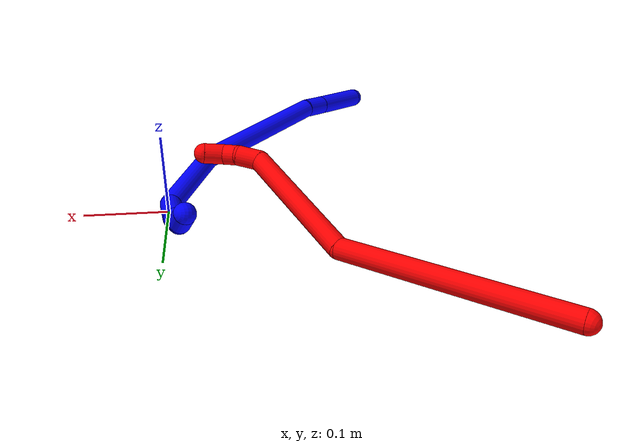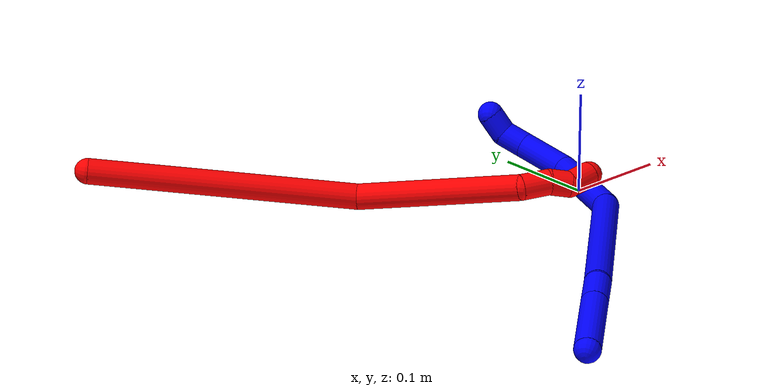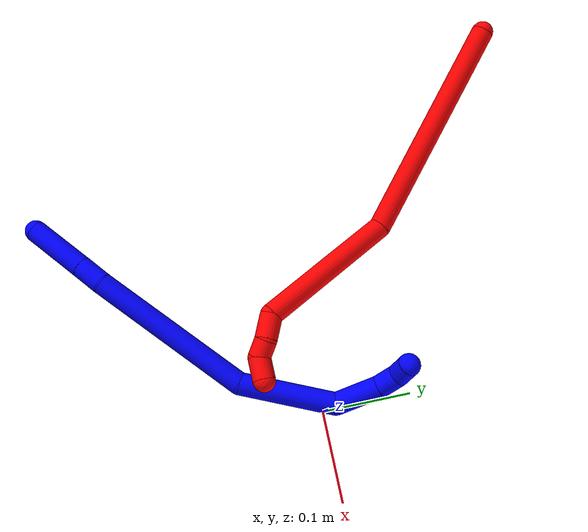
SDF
<sdf version="1.7">
 <world name="default">
  <plugin name="TubeGeneratorPlugin" filename="libtube_generator_plugin.so"/>
  <model name="photoneo_s_sensor">
   <static>1</static>
   <pose>0 0 2 1.57079 1.57079 3.14159</pose>
   <link name="link">
    <inertial><mass>0.1</mass></inertial>
    <sensor name="sensor" type="depth">
     <update_rate>30</update_rate>
     <camera>
      <horizontal_fov>1.22</horizontal_fov>
      <image><width>1920</width><height>1200</height><format>B8G8R8</format></image>
      <clip><near>0.1</near><far>4</far></clip>
      <depth_camera><output>points</output></depth_camera>
     </camera>
     <plugin name="camera_plugin" filename="libgazebo_ros_depth_camera.so">
      <baseline>0.2</baseline>
      <alwaysOn>1</alwaysOn>
      <updateRate>0.0</updateRate>
      <cameraName>camera_ir</cameraName>
      <imageTopicName>/camera/color/image_raw</imageTopicName>
      <cameraInfoTopicName>/camera/color/camera_info</cameraInfoTopicName>
      <depthImageTopicName>/camera/depth/image_raw</depthImageTopicName>
      <depthImageCameraInfoTopicName>/camera/depth/camera_info</depthImageCameraInfoTopicName>
      <pointCloudTopicName>/camera/depth/points</pointCloudTopicName>
      <frameName>fr_optical</frameName>
      <pointCloudCutoff>0.1</pointCloudCutoff>
      <pointCloudCutoffMax>2.0</pointCloudCutoffMax>
      <distortionK1>0</distortionK1>
      <distortionK2>0</distortionK2>
      <distortionK3>0</distortionK3>
      <distortionT1>0</distortionT1>
      <distortionT2>0</distortionT2>
      <CxPrime>0</CxPrime>
      <Cx>0</Cx>
      <Cy>0</Cy>
      <focalLength>0</focalLength>
      <hackBaseline>0</hackBaseline>
     </plugin>
    </sensor>
   </link>
  </model>
  <gravity>0 0 -9.8</gravity>
  <magnetic_field>6e-06 2.3e-05 -4.2e-05</magnetic_field>
  <atmosphere type="adiabatic"/>
  <physics name="default_physics" default="0" type="ode">
   <max_step_size>0.003</max_step_size>
   <real_time_factor>1</real_time_factor>
   <real_time_update_rate>1000</real_time_update_rate>
   <max_contacts>10000</max_contacts>
   <ode>
    <solver>
     <type>quick</type>
     <iters>100</iters>
     <sor>1.3</sor>
     <use_dynamic_moi_rescaling>0</use_dynamic_moi_rescaling>
    </solver>
    <constraints>
     <contact_max_correcting_vel>0</contact_max_correcting_vel>
     <contact_surface_layer>0.001</contact_surface_layer>
     <cfm>0</cfm>
     <erp>0.2</erp>
    </constraints>
   </ode>
  </physics>
  <scene><ambient>0.4 0.4 0.4 1</ambient><background>0.7 0.7 0.7 1</background><shadows>0</shadows></scene>
  <audio><device>default</device></audio>
  <spherical_coordinates>
   <surface_model>EARTH_WGS84</surface_model>
   <latitude_deg>0</latitude_deg>
   <longitude_deg>0</longitude_deg>
   <elevation>0</elevation>
   <heading_deg>0</heading_deg>
  </spherical_coordinates>
  <model name="bin">
   <static>1</static>
   <link name="bottom">
    <collision name="collision-bottom">
     <pose>0 0 -0.01 0 -0 0</pose>
     <geometry><box><size>0.8 0.6 0.02</size></box></geometry>
     <surface>
      <friction><ode><mu>100</mu><mu2>100</mu2></ode></friction>
      <contact><collide_bitmask>65535</collide_bitmask></contact>
     </surface>
    </collision>
   </link>
   <link name="west_wall">
    <collision name="collision-west_wall">
     <pose>-0.41 0 0.1 0 -0 0</pose>
     <geometry><box><size>0.02 0.6 0.2</size></box></geometry>
     <surface>
      <friction><ode><mu>100</mu><mu2>100</mu2></ode></friction>
      <contact><collide_bitmask>65535</collide_bitmask></contact>
     </surface>
    </collision>
   </link>
   <link name="east_wall">
    <collision name="collision-east_wall">
     <pose>0.41 0 0.1 0 -0 0</pose>
     <geometry><box><size>0.02 0.6 0.2</size></box></geometry>
     <surface>
      <friction><ode><mu>100</mu><mu2>100</mu2></ode></friction>
      <contact><collide_bitmask>65535</collide_bitmask></contact>
     </surface>
    </collision>
   </link>
   <link name="south_wall">
    <collision name="collision-south_wall">
     <pose>0 -0.31 0.1 0 -0 0</pose>
     <geometry><box><size>0.8 0.02 0.2</size></box></geometry>
     <surface>
      <friction><ode><mu>100</mu><mu2>100</mu2></ode></friction>
      <contact><collide_bitmask>65535</collide_bitmask></contact>
     </surface>
    </collision>
   </link>
   <link name="north_wall">
    <collision name="collision-north_wall">
     <pose>0 0.31 0.1 0 -0 0</pose>
     <geometry><box><size>0.8 0.02 0.2</size></box></geometry>
     <surface>
      <friction><ode><mu>100</mu><mu2>100</mu2></ode></friction>
      <contact><collide_bitmask>65535</collide_bitmask></contact>
     </surface>
    </collision>
   </link>
  </model>
  <model name="1">
   <static>0</static>
   <link name="1">
    <collision name="collision-cylinder-e_1_1_4">
     <pose>-0.00607 0.008571 -0.035417 -2.90416 -0.165064 1.21272</pose>
     <geometry><cylinder><radius>0.0125</radius><length>0.073883</length></cylinder></geometry>
     <surface>
      <friction><ode><mu>1.16</mu><mu2>1.16</mu2><slip1>0</slip1><slip2>0</slip2></ode></friction>
      <contact><ode><kp>1e+06</kp><kd>1</kd><max_vel>0</max_vel><min_depth>0.001</min_depth></ode></contact>
     </surface>
    </collision>
    <visual name="visual-cylinder-e_1_1_4">
     <pose>-0.00607 0.008571 -0.035417 -2.90416 -0.165064 1.21272</pose>
     <geometry><cylinder><radius>0.0125</radius><length>0.073883</length></cylinder></geometry>
     <material><ambient>0 0 1 1</ambient></material>
    </visual>
    <collision name="collision-cylinder-e_2_4_5">
     <pose>-0.014751 0.020706 -0.086274 -2.91472 -0.163321 1.24594</pose>
     <geometry><cylinder><radius>0.0125</radius><length>0.032119</length></cylinder></geometry>
     <surface>
      <friction><ode><mu>1.16</mu><mu2>1.16</mu2><slip1>0</slip1><slip2>0</slip2></ode></friction>
      <contact><ode><kp>1e+06</kp><kd>1</kd><max_vel>0</max_vel><min_depth>0.001</min_depth></ode></contact>
     </surface>
    </collision>
    <visual name="visual-cylinder-e_2_4_5">
     <pose>-0.014751 0.020706 -0.086274 -2.91472 -0.163321 1.24594</pose>
     <geometry><cylinder><radius>0.0125</radius><length>0.032119</length></cylinder></geometry>
     <material><ambient>0 0 1 1</ambient></material>
    </visual>
    <collision name="collision-cylinder-e_3_5_6">
     <pose>-0.04412 0.058172 -0.185428 -2.75681 -0.288019 1.27983</pose>
     <geometry><cylinder><radius>0.0125</radius><length>0.188398</length></cylinder></geometry>
     <surface>
      <friction><ode><mu>1.16</mu><mu2>1.16</mu2><slip1>0</slip1><slip2>0</slip2></ode></friction>
      <contact><ode><kp>1e+06</kp><kd>1</kd><max_vel>0</max_vel><min_depth>0.001</min_depth></ode></contact>
     </surface>
    </collision>
    <visual name="visual-cylinder-e_3_5_6">
     <pose>-0.04412 0.058172 -0.185428 -2.75681 -0.288019 1.27983</pose>
     <geometry><cylinder><radius>0.0125</radius><length>0.188398</length></cylinder></geometry>
     <material><ambient>0 0 1 1</ambient></material>
    </visual>
    <collision name="collision-cylinder-e_4_6_7">
     <pose>-0.072132 0.12737 -0.309905 -2.42793 -0.023255 0.062364</pose>
     <geometry><cylinder><radius>0.0125</radius><length>0.107867</length></cylinder></geometry>
     <surface>
      <friction><ode><mu>1.16</mu><mu2>1.16</mu2><slip1>0</slip1><slip2>0</slip2></ode></friction>
      <contact><ode><kp>1e+06</kp><kd>1</kd><max_vel>0</max_vel><min_depth>0.001</min_depth></ode></contact>
     </surface>
    </collision>
    <visual name="visual-cylinder-e_4_6_7">
     <pose>-0.072132 0.12737 -0.309905 -2.42793 -0.023255 0.062364</pose>
     <geometry><cylinder><radius>0.0125</radius><length>0.107867</length></cylinder></geometry>
     <material><ambient>0 0 1 1</ambient></material>
    </visual>
    <collision name="collision-cylinder-e_5_7_8">
     <pose>-0.060061 0.180263 -0.362672 -2.16951 0.558961 -0.995252</pose>
     <geometry><cylinder><radius>0.0125</radius><length>0.050253</length></cylinder></geometry>
     <surface>
      <friction><ode><mu>1.16</mu><mu2>1.16</mu2><slip1>0</slip1><slip2>0</slip2></ode></friction>
      <contact><ode><kp>1e+06</kp><kd>1</kd><max_vel>0</max_vel><min_depth>0.001</min_depth></ode></contact>
     </surface>
    </collision>
    <visual name="visual-cylinder-e_5_7_8">
     <pose>-0.060061 0.180263 -0.362672 -2.16951 0.558961 -0.995252</pose>
     <geometry><cylinder><radius>0.0125</radius><length>0.050253</length></cylinder></geometry>
     <material><ambient>0 0 1 1</ambient></material>
    </visual>
    <collision name="collision-cylinder-e_6_8_9">
     <pose>-0.038356 0.205619 -0.379192 -2.0978 0.75105 -1.20189</pose>
     <geometry><cylinder><radius>0.0125</radius><length>0.024562</length></cylinder></geometry>
     <surface>
      <friction><ode><mu>1.16</mu><mu2>1.16</mu2><slip1>0</slip1><slip2>0</slip2></ode></friction>
      <contact><ode><kp>1e+06</kp><kd>1</kd><max_vel>0</max_vel><min_depth>0.001</min_depth></ode></contact>
     </surface>
    </collision>
    <visual name="visual-cylinder-e_6_8_9">
     <pose>-0.038356 0.205619 -0.379192 -2.0978 0.75105 -1.20189</pose>
     <geometry><cylinder><radius>0.0125</radius><length>0.024562</length></cylinder></geometry>
     <material><ambient>0 0 1 1</ambient></material>
    </visual>
    <collision name="collision-cylinder-e_7_9_2">
     <pose>-0.019238 0.214113 -0.387641 -2.95688 1.21399 -2.87642</pose>
     <geometry><cylinder><radius>0.0125</radius><length>0.022917</length></cylinder></geometry>
     <surface>
      <friction><ode><mu>1.16</mu><mu2>1.16</mu2><slip1>0</slip1><slip2>0</slip2></ode></friction>
      <contact><ode><kp>1e+06</kp><kd>1</kd><max_vel>0</max_vel><min_depth>0.001</min_depth></ode></contact>
     </surface>
    </collision>
    <visual name="visual-cylinder-e_7_9_2">
     <pose>-0.019238 0.214113 -0.387641 -2.95688 1.21399 -2.87642</pose>
     <geometry><cylinder><radius>0.0125</radius><length>0.022917</length></cylinder></geometry>
     <material><ambient>0 0 1 1</ambient></material>
    </visual>
    <collision name="collision-sphere-2">
     <pose>-0.008502 0.214848 -0.391576 0 -0 0</pose>
     <geometry><sphere><radius>0.0125</radius></sphere></geometry>
     <surface>
      <friction><ode><mu>1.16</mu><mu2>1.16</mu2><slip1>0</slip1><slip2>0</slip2></ode></friction>
      <contact><ode><kp>1e+06</kp><kd>1</kd><max_vel>0</max_vel><min_depth>0.001</min_depth></ode></contact>
     </surface>
    </collision>
    <visual name="visual-sphere-2">
     <pose>-0.008502 0.214848 -0.391576 0 -0 0</pose>
     <geometry><sphere><radius>0.0125</radius></sphere></geometry>
     <material><ambient>0 0 1 1</ambient></material>
    </visual>
    <collision name="collision-sphere-9">
     <pose>-0.029975 0.213378 -0.383707 0 -0 0</pose>
     <geometry><sphere><radius>0.0125</radius></sphere></geometry>
     <surface>
      <friction><ode><mu>1.16</mu><mu2>1.16</mu2><slip1>0</slip1><slip2>0</slip2></ode></friction>
      <contact><ode><kp>1e+06</kp><kd>1</kd><max_vel>0</max_vel><min_depth>0.001</min_depth></ode></contact>
     </surface>
    </collision>
    <visual name="visual-sphere-9">
     <pose>-0.029975 0.213378 -0.383707 0 -0 0</pose>
     <geometry><sphere><radius>0.0125</radius></sphere></geometry>
     <material><ambient>0 0 1 1</ambient></material>
    </visual>
    <collision name="collision-sphere-4">
     <pose>-0.01214 0.017141 -0.070834 0 -0 0</pose>
     <geometry><sphere><radius>0.0125</radius></sphere></geometry>
     <surface>
      <friction><ode><mu>1.16</mu><mu2>1.16</mu2><slip1>0</slip1><slip2>0</slip2></ode></friction>
      <contact><ode><kp>1e+06</kp><kd>1</kd><max_vel>0</max_vel><min_depth>0.001</min_depth></ode></contact>
     </surface>
    </collision>
    <visual name="visual-sphere-4">
     <pose>-0.01214 0.017141 -0.070834 0 -0 0</pose>
     <geometry><sphere><radius>0.0125</radius></sphere></geometry>
     <material><ambient>0 0 1 1</ambient></material>
    </visual>
    <collision name="collision-sphere-1">
     <geometry><sphere><radius>0.0125</radius></sphere></geometry>
     <surface>
      <friction><ode><mu>1.16</mu><mu2>1.16</mu2><slip1>0</slip1><slip2>0</slip2></ode></friction>
      <contact><ode><kp>1e+06</kp><kd>1</kd><max_vel>0</max_vel><min_depth>0.001</min_depth></ode></contact>
     </surface>
    </collision>
    <visual name="visual-sphere-1">
     <geometry><sphere><radius>0.0125</radius></sphere></geometry>
     <material><ambient>0 0 1 1</ambient></material>
    </visual>
    <collision name="collision-sphere-8">
     <pose>-0.046736 0.19786 -0.374677 0 -0 0</pose>
     <geometry><sphere><radius>0.0125</radius></sphere></geometry>
     <surface>
      <friction><ode><mu>1.16</mu><mu2>1.16</mu2><slip1>0</slip1><slip2>0</slip2></ode></friction>
      <contact><ode><kp>1e+06</kp><kd>1</kd><max_vel>0</max_vel><min_depth>0.001</min_depth></ode></contact>
     </surface>
    </collision>
    <visual name="visual-sphere-8">
     <pose>-0.046736 0.19786 -0.374677 0 -0 0</pose>
     <geometry><sphere><radius>0.0125</radius></sphere></geometry>
     <material><ambient>0 0 1 1</ambient></material>
    </visual>
    <collision name="collision-sphere-5">
     <pose>-0.017363 0.02427 -0.101714 0 -0 0</pose>
     <geometry><sphere><radius>0.0125</radius></sphere></geometry>
     <surface>
      <friction><ode><mu>1.16</mu><mu2>1.16</mu2><slip1>0</slip1><slip2>0</slip2></ode></friction>
      <contact><ode><kp>1e+06</kp><kd>1</kd><max_vel>0</max_vel><min_depth>0.001</min_depth></ode></contact>
     </surface>
    </collision>
    <visual name="visual-sphere-5">
     <pose>-0.017363 0.02427 -0.101714 0 -0 0</pose>
     <geometry><sphere><radius>0.0125</radius></sphere></geometry>
     <material><ambient>0 0 1 1</ambient></material>
    </visual>
    <collision name="collision-sphere-6">
     <pose>-0.070878 0.092074 -0.269143 0 -0 0</pose>
     <geometry><sphere><radius>0.0125</radius></sphere></geometry>
     <surface>
      <friction><ode><mu>1.16</mu><mu2>1.16</mu2><slip1>0</slip1><slip2>0</slip2></ode></friction>
      <contact><ode><kp>1e+06</kp><kd>1</kd><max_vel>0</max_vel><min_depth>0.001</min_depth></ode></contact>
     </surface>
    </collision>
    <visual name="visual-sphere-6">
     <pose>-0.070878 0.092074 -0.269143 0 -0 0</pose>
     <geometry><sphere><radius>0.0125</radius></sphere></geometry>
     <material><ambient>0 0 1 1</ambient></material>
    </visual>
    <collision name="collision-sphere-7">
     <pose>-0.073386 0.162666 -0.350666 0 -0 0</pose>
     <geometry><sphere><radius>0.0125</radius></sphere></geometry>
     <surface>
      <friction><ode><mu>1.16</mu><mu2>1.16</mu2><slip1>0</slip1><slip2>0</slip2></ode></friction>
      <contact><ode><kp>1e+06</kp><kd>1</kd><max_vel>0</max_vel><min_depth>0.001</min_depth></ode></contact>
     </surface>
    </collision>
    <visual name="visual-sphere-7">
     <pose>-0.073386 0.162666 -0.350666 0 -0 0</pose>
     <geometry><sphere><radius>0.0125</radius></sphere></geometry>
     <material><ambient>0 0 1 1</ambient></material>
    </visual>
    <inertial>
     <pose>-0.042833 0.090026 -0.220347 0 -0 0</pose>
     <mass>0.5</mass>
     <inertia>
      <ixx>0.000835</ixx>
      <ixy>0</ixy>
      <ixz>0</ixz>
      <iyy>0.000386</iyy>
      <iyz>0</iyz>
      <izz>-0.000165</izz>
     </inertia>
    </inertial>
   </link>
   <pose>-0.266987 -0.278708 0.012161 -2.25459 -0.848552 2.72379</pose>
  </model>
  <model name="2">
   <static>0</static>
   <link name="2">
    <collision name="collision-cylinder-e_1_1_4">
     <pose>0.029315 0.000445 -0.126487 -3.13808 0.227742 -3.11085</pose>
     <geometry><cylinder><radius>0.0125</radius><length>0.259681</length></cylinder></geometry>
     <surface>
      <friction><ode><mu>1.16</mu><mu2>1.16</mu2><slip1>0</slip1><slip2>0</slip2></ode></friction>
      <contact><ode><kp>1e+06</kp><kd>1</kd><max_vel>0</max_vel><min_depth>0.001</min_depth></ode></contact>
     </surface>
    </collision>
    <visual name="visual-cylinder-e_1_1_4">
     <pose>0.029315 0.000445 -0.126487 -3.13808 0.227742 -3.11085</pose>
     <geometry><cylinder><radius>0.0125</radius><length>0.259681</length></cylinder></geometry>
     <material><ambient>1 0 0 1</ambient></material>
    </visual>
    <collision name="collision-cylinder-e_2_4_5">
     <pose>0.04573 -0.022679 -0.331661 2.85057 -0.155778 -0.978723</pose>
     <geometry><cylinder><radius>0.0125</radius><length>0.166296</length></cylinder></geometry>
     <surface>
      <friction><ode><mu>1.16</mu><mu2>1.16</mu2><slip1>0</slip1><slip2>0</slip2></ode></friction>
      <contact><ode><kp>1e+06</kp><kd>1</kd><max_vel>0</max_vel><min_depth>0.001</min_depth></ode></contact>
     </surface>
    </collision>
    <visual name="visual-cylinder-e_2_4_5">
     <pose>0.04573 -0.022679 -0.331661 2.85057 -0.155778 -0.978723</pose>
     <geometry><cylinder><radius>0.0125</radius><length>0.166296</length></cylinder></geometry>
     <material><ambient>1 0 0 1</ambient></material>
    </visual>
    <collision name="collision-cylinder-e_3_5_6">
     <pose>0.039537 -0.048914 -0.422439 2.92457 0.496468 2.32972</pose>
     <geometry><cylinder><radius>0.0125</radius><length>0.028162</length></cylinder></geometry>
     <surface>
      <friction><ode><mu>1.16</mu><mu2>1.16</mu2><slip1>0</slip1><slip2>0</slip2></ode></friction>
      <contact><ode><kp>1e+06</kp><kd>1</kd><max_vel>0</max_vel><min_depth>0.001</min_depth></ode></contact>
     </surface>
    </collision>
    <visual name="visual-cylinder-e_3_5_6">
     <pose>0.039537 -0.048914 -0.422439 2.92457 0.496468 2.32972</pose>
     <geometry><cylinder><radius>0.0125</radius><length>0.028162</length></cylinder></geometry>
     <material><ambient>1 0 0 1</ambient></material>
    </visual>
    <collision name="collision-cylinder-e_4_6_7">
     <pose>0.049748 -0.050838 -0.44399 -3.06324 0.353716 -2.7098</pose>
     <geometry><cylinder><radius>0.0125</radius><length>0.020231</length></cylinder></geometry>
     <surface>
      <friction><ode><mu>1.16</mu><mu2>1.16</mu2><slip1>0</slip1><slip2>0</slip2></ode></friction>
      <contact><ode><kp>1e+06</kp><kd>1</kd><max_vel>0</max_vel><min_depth>0.001</min_depth></ode></contact>
     </surface>
    </collision>
    <visual name="visual-cylinder-e_4_6_7">
     <pose>0.049748 -0.050838 -0.44399 -3.06324 0.353716 -2.7098</pose>
     <geometry><cylinder><radius>0.0125</radius><length>0.020231</length></cylinder></geometry>
     <material><ambient>1 0 0 1</ambient></material>
    </visual>
    <collision name="collision-cylinder-e_5_7_2">
     <pose>0.063385 -0.052869 -0.460788 2.78011 0.911964 2.42829</pose>
     <geometry><cylinder><radius>0.0125</radius><length>0.02563</length></cylinder></geometry>
     <surface>
      <friction><ode><mu>1.16</mu><mu2>1.16</mu2><slip1>0</slip1><slip2>0</slip2></ode></friction>
      <contact><ode><kp>1e+06</kp><kd>1</kd><max_vel>0</max_vel><min_depth>0.001</min_depth></ode></contact>
     </surface>
    </collision>
    <visual name="visual-cylinder-e_5_7_2">
     <pose>0.063385 -0.052869 -0.460788 2.78011 0.911964 2.42829</pose>
     <geometry><cylinder><radius>0.0125</radius><length>0.02563</length></cylinder></geometry>
     <material><ambient>1 0 0 1</ambient></material>
    </visual>
    <collision name="collision-sphere-2">
     <pose>0.073518 -0.055644 -0.468126 0 -0 0</pose>
     <geometry><sphere><radius>0.0125</radius></sphere></geometry>
     <surface>
      <friction><ode><mu>1.16</mu><mu2>1.16</mu2><slip1>0</slip1><slip2>0</slip2></ode></friction>
      <contact><ode><kp>1e+06</kp><kd>1</kd><max_vel>0</max_vel><min_depth>0.001</min_depth></ode></contact>
     </surface>
    </collision>
    <visual name="visual-sphere-2">
     <pose>0.073518 -0.055644 -0.468126 0 -0 0</pose>
     <geometry><sphere><radius>0.0125</radius></sphere></geometry>
     <material><ambient>1 0 0 1</ambient></material>
    </visual>
    <collision name="collision-sphere-7">
     <pose>0.053252 -0.050095 -0.45345 0 -0 0</pose>
     <geometry><sphere><radius>0.0125</radius></sphere></geometry>
     <surface>
      <friction><ode><mu>1.16</mu><mu2>1.16</mu2><slip1>0</slip1><slip2>0</slip2></ode></friction>
      <contact><ode><kp>1e+06</kp><kd>1</kd><max_vel>0</max_vel><min_depth>0.001</min_depth></ode></contact>
     </surface>
    </collision>
    <visual name="visual-sphere-7">
     <pose>0.053252 -0.050095 -0.45345 0 -0 0</pose>
     <geometry><sphere><radius>0.0125</radius></sphere></geometry>
     <material><ambient>1 0 0 1</ambient></material>
    </visual>
    <collision name="collision-sphere-6">
     <pose>0.046244 -0.05158 -0.43453 0 -0 0</pose>
     <geometry><sphere><radius>0.0125</radius></sphere></geometry>
     <surface>
      <friction><ode><mu>1.16</mu><mu2>1.16</mu2><slip1>0</slip1><slip2>0</slip2></ode></friction>
      <contact><ode><kp>1e+06</kp><kd>1</kd><max_vel>0</max_vel><min_depth>0.001</min_depth></ode></contact>
     </surface>
    </collision>
    <visual name="visual-sphere-6">
     <pose>0.046244 -0.05158 -0.43453 0 -0 0</pose>
     <geometry><sphere><radius>0.0125</radius></sphere></geometry>
     <material><ambient>1 0 0 1</ambient></material>
    </visual>
    <collision name="collision-sphere-5">
     <pose>0.03283 -0.046248 -0.410348 0 -0 0</pose>
     <geometry><sphere><radius>0.0125</radius></sphere></geometry>
     <surface>
      <friction><ode><mu>1.16</mu><mu2>1.16</mu2><slip1>0</slip1><slip2>0</slip2></ode></friction>
      <contact><ode><kp>1e+06</kp><kd>1</kd><max_vel>0</max_vel><min_depth>0.001</min_depth></ode></contact>
     </surface>
    </collision>
    <visual name="visual-sphere-5">
     <pose>0.03283 -0.046248 -0.410348 0 -0 0</pose>
     <geometry><sphere><radius>0.0125</radius></sphere></geometry>
     <material><ambient>1 0 0 1</ambient></material>
    </visual>
    <collision name="collision-sphere-1">
     <geometry><sphere><radius>0.0125</radius></sphere></geometry>
     <surface>
      <friction><ode><mu>1.16</mu><mu2>1.16</mu2><slip1>0</slip1><slip2>0</slip2></ode></friction>
      <contact><ode><kp>1e+06</kp><kd>1</kd><max_vel>0</max_vel><min_depth>0.001</min_depth></ode></contact>
     </surface>
    </collision>
    <visual name="visual-sphere-1">
     <geometry><sphere><radius>0.0125</radius></sphere></geometry>
     <material><ambient>1 0 0 1</ambient></material>
    </visual>
    <collision name="collision-sphere-4">
     <pose>0.05863 0.00089 -0.252975 0 -0 0</pose>
     <geometry><sphere><radius>0.0125</radius></sphere></geometry>
     <surface>
      <friction><ode><mu>1.16</mu><mu2>1.16</mu2><slip1>0</slip1><slip2>0</slip2></ode></friction>
      <contact><ode><kp>1e+06</kp><kd>1</kd><max_vel>0</max_vel><min_depth>0.001</min_depth></ode></contact>
     </surface>
    </collision>
    <visual name="visual-sphere-4">
     <pose>0.05863 0.00089 -0.252975 0 -0 0</pose>
     <geometry><sphere><radius>0.0125</radius></sphere></geometry>
     <material><ambient>1 0 0 1</ambient></material>
    </visual>
    <inertial>
     <pose>0.037924 -0.014834 -0.241379 0 -0 0</pose>
     <mass>0.5</mass>
     <inertia>
      <ixx>-0.001576</ixx>
      <ixy>0</ixy>
      <ixz>0</ixz>
      <iyy>0.000915</iyy>
      <iyz>0</iyz>
      <izz>-0.000205</izz>
     </inertia>
    </inertial>
   </link>
   <pose>-0.387612 0.274769 0.043293 -1.46845 0.055646 0.647812</pose>
  </model>
 </world>
</sdf>
